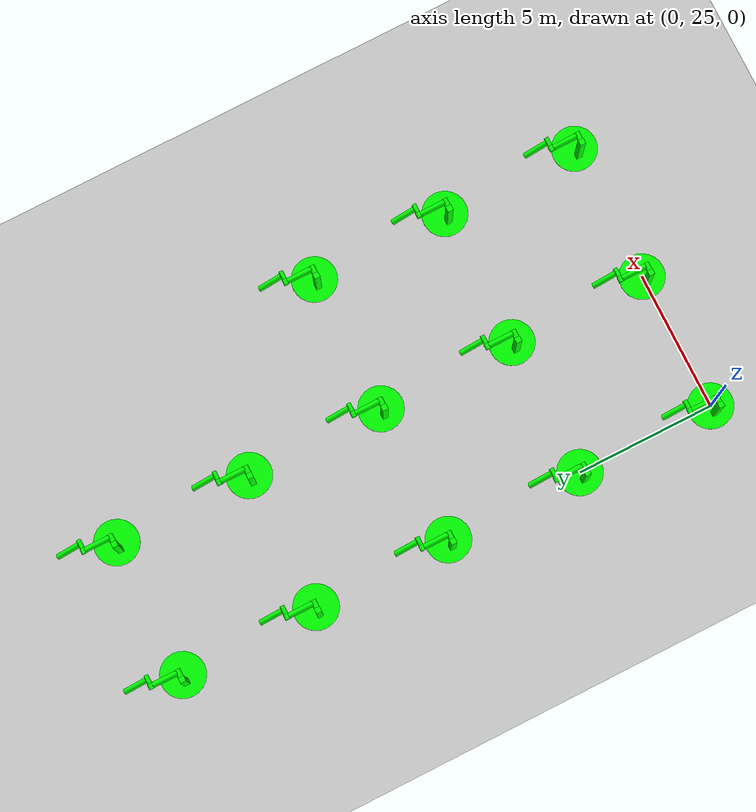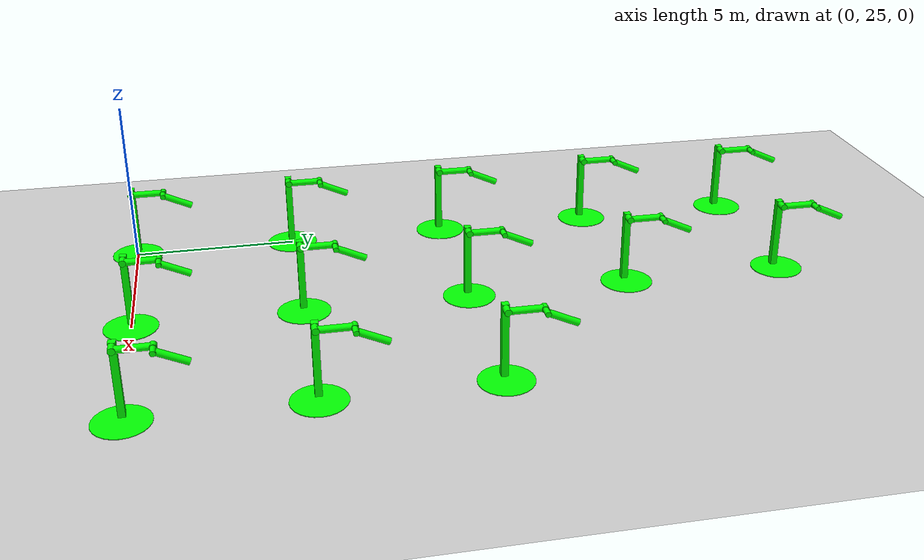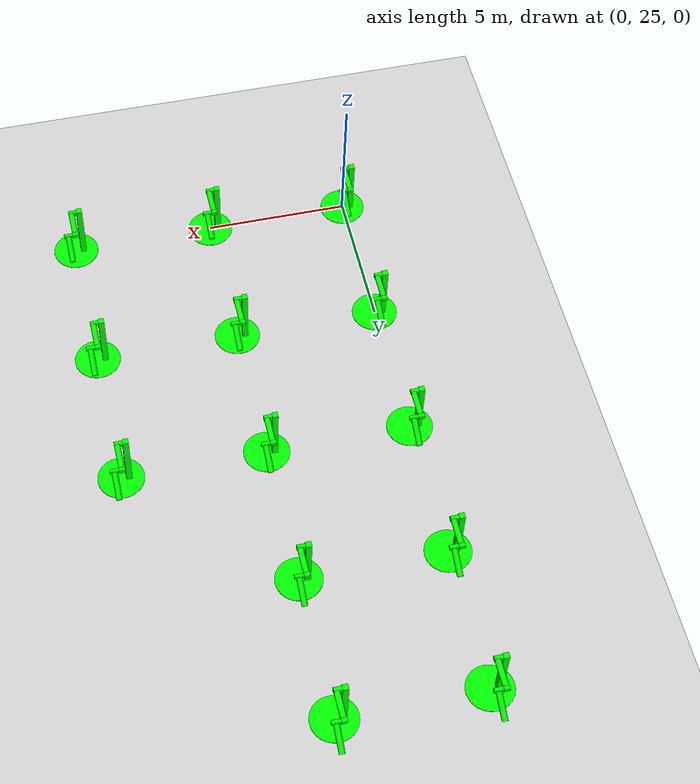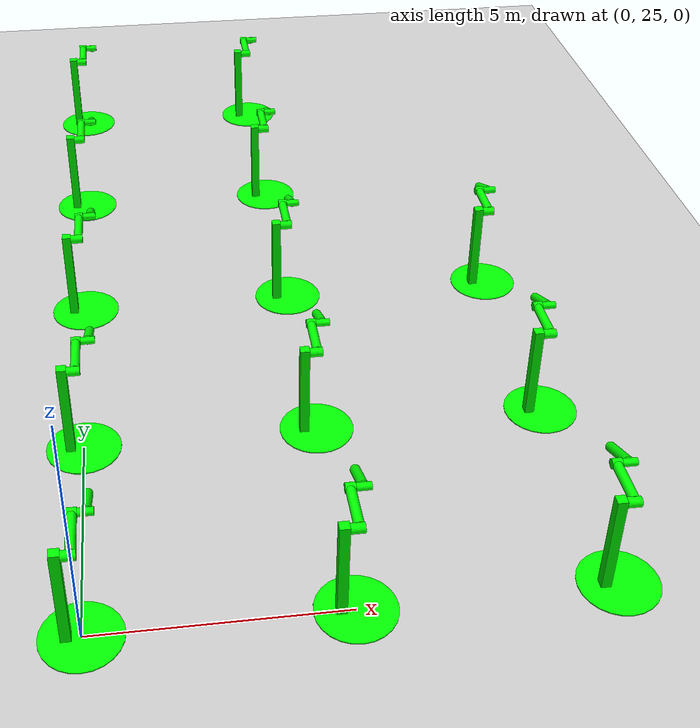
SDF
<sdf version="1.6">
 <world name="double_pendulums">
  <model name="ground_plane">
   <static>true</static>
   <link name="link">
    <collision name="collision">
     <geometry><plane><normal>0 0 1</normal><size>100 100</size></plane></geometry>
    </collision>
    <visual name="visual">
     <geometry><plane><normal>0 0 1</normal><size>100 100</size></plane></geometry>
     <material>
      <ambient>0.8 0.8 0.8 1</ambient>
      <diffuse>0.8 0.8 0.8 1</diffuse>
      <specular>0.8 0.8 0.8 1</specular>
     </material>
    </visual>
   </link>
  </model>
  <model name="dbl_pendulum_55">
   <pose>0 25 0 0 0 0</pose>
   <link name="base">
    <inertial><mass>100</mass></inertial>
    <visual name="vis_plate_on_ground">
     <pose>0 0 0.01 0 0 0</pose>
     <geometry><cylinder><radius>0.8</radius><length>0.02</length></cylinder></geometry>
     <material><ambient>0 1 0 1</ambient><diffuse>0 1 0 1</diffuse><specular>0 1 0 1</specular></material>
    </visual>
    <visual name="vis_pole">
     <pose>-0.275 0 1.1 0 0 0</pose>
     <geometry><box><size>0.2 0.2 2.2</size></box></geometry>
     <material><ambient>0 1 0 1</ambient><diffuse>0 1 0 1</diffuse><specular>0 1 0 1</specular></material>
    </visual>
    <collision name="col_plate_on_ground">
     <pose>0 0 0.01 0 0 0</pose>
     <geometry><cylinder><radius>0.8</radius><length>0.02</length></cylinder></geometry>
    </collision>
    <collision name="col_pole">
     <pose>-0.275 0 1.1 0 0 0</pose>
     <geometry><box><size>0.2 0.2 2.2</size></box></geometry>
    </collision>
   </link>
   <link name="upper_link">
    <pose>0 0 2.1 -1.5708 0 0</pose>
    <inertial><pose>0 0 0.5 0 0 0</pose></inertial>
    <visual name="vis_upper_joint">
     <pose>-0.05 0 0 0 1.5708 0</pose>
     <geometry><cylinder><radius>0.1</radius><length>0.3</length></cylinder></geometry>
     <material><ambient>0 1 0 1</ambient><diffuse>0 1 0 1</diffuse><specular>0 1 0 1</specular></material>
    </visual>
    <visual name="vis_lower_joint">
     <pose>0 0 1.0 0 1.5708 0</pose>
     <geometry><cylinder><radius>0.1</radius><length>0.2</length></cylinder></geometry>
     <material><ambient>0 1 0 1</ambient><diffuse>0 1 0 1</diffuse><specular>0 1 0 1</specular></material>
    </visual>
    <visual name="vis_cylinder">
     <pose>0 0 0.5 0 0 0</pose>
     <geometry><cylinder><radius>0.1</radius><length>0.9</length></cylinder></geometry>
     <material><ambient>0 1 0 1</ambient><diffuse>0 1 0 1</diffuse><specular>0 1 0 1</specular></material>
    </visual>
    <collision name="col_upper_joint">
     <pose>-0.05 0 0 0 1.5708 0</pose>
     <geometry><cylinder><radius>0.1</radius><length>0.3</length></cylinder></geometry>
    </collision>
    <collision name="col_lower_joint">
     <pose>0 0 1.0 0 1.5708 0</pose>
     <geometry><cylinder><radius>0.1</radius><length>0.2</length></cylinder></geometry>
    </collision>
    <collision name="col_cylinder">
     <pose>0 0 0.5 0 0 0</pose>
     <geometry><cylinder><radius>0.1</radius><length>0.9</length></cylinder></geometry>
    </collision>
   </link>
   <link name="lower_link">
    <pose>0.25 1.0 2.1 -2 0 0</pose>
    <inertial><pose>0 0 0.5 0 0 0</pose></inertial>
    <visual name="vis_lower_joint">
     <pose>0 0 0 0 1.5708 0</pose>
     <geometry><cylinder><radius>0.08</radius><length>0.3</length></cylinder></geometry>
     <material><ambient>0 1 0 1</ambient><diffuse>0 1 0 1</diffuse><specular>0 1 0 1</specular></material>
    </visual>
    <visual name="vis_cylinder">
     <pose>0 0 0.5 0 0 0</pose>
     <geometry><cylinder><radius>0.1</radius><length>0.9</length></cylinder></geometry>
     <material><ambient>0 1 0 1</ambient><diffuse>0 1 0 1</diffuse><specular>0 1 0 1</specular></material>
    </visual>
    <collision name="col_lower_joint">
     <pose>0 0 0 0 1.5708 0</pose>
     <geometry><cylinder><radius>0.08</radius><length>0.3</length></cylinder></geometry>
    </collision>
    <collision name="col_cylinder">
     <pose>0 0 0.5 0 0 0</pose>
     <geometry><cylinder><radius>0.1</radius><length>0.9</length></cylinder></geometry>
    </collision>
   </link>
   <joint name="upper_joint" type="revolute">
    <parent>base</parent>
    <child>upper_link</child>
    <axis><xyz>1.0 0 0</xyz></axis>
   </joint>
   <joint name="lower_joint" type="revolute">
    <parent>upper_link</parent>
    <child>lower_link</child>
    <axis><xyz>1.0 0 0</xyz></axis>
   </joint>
  </model>
  <model name="dbl_pendulum_56">
   <pose>5 25 0 0 0 0</pose>
   <link name="base">
    <inertial><mass>100</mass></inertial>
    <visual name="vis_plate_on_ground">
     <pose>0 0 0.01 0 0 0</pose>
     <geometry><cylinder><radius>0.8</radius><length>0.02</length></cylinder></geometry>
     <material><ambient>0 1 0 1</ambient><diffuse>0 1 0 1</diffuse><specular>0 1 0 1</specular></material>
    </visual>
    <visual name="vis_pole">
     <pose>-0.275 0 1.1 0 0 0</pose>
     <geometry><box><size>0.2 0.2 2.2</size></box></geometry>
     <material><ambient>0 1 0 1</ambient><diffuse>0 1 0 1</diffuse><specular>0 1 0 1</specular></material>
    </visual>
    <collision name="col_plate_on_ground">
     <pose>0 0 0.01 0 0 0</pose>
     <geometry><cylinder><radius>0.8</radius><length>0.02</length></cylinder></geometry>
    </collision>
    <collision name="col_pole">
     <pose>-0.275 0 1.1 0 0 0</pose>
     <geometry><box><size>0.2 0.2 2.2</size></box></geometry>
    </collision>
   </link>
   <link name="upper_link">
    <pose>0 0 2.1 -1.5708 0 0</pose>
    <inertial><pose>0 0 0.5 0 0 0</pose></inertial>
    <visual name="vis_upper_joint">
     <pose>-0.05 0 0 0 1.5708 0</pose>
     <geometry><cylinder><radius>0.1</radius><length>0.3</length></cylinder></geometry>
     <material><ambient>0 1 0 1</ambient><diffuse>0 1 0 1</diffuse><specular>0 1 0 1</specular></material>
    </visual>
    <visual name="vis_lower_joint">
     <pose>0 0 1.0 0 1.5708 0</pose>
     <geometry><cylinder><radius>0.1</radius><length>0.2</length></cylinder></geometry>
     <material><ambient>0 1 0 1</ambient><diffuse>0 1 0 1</diffuse><specular>0 1 0 1</specular></material>
    </visual>
    <visual name="vis_cylinder">
     <pose>0 0 0.5 0 0 0</pose>
     <geometry><cylinder><radius>0.1</radius><length>0.9</length></cylinder></geometry>
     <material><ambient>0 1 0 1</ambient><diffuse>0 1 0 1</diffuse><specular>0 1 0 1</specular></material>
    </visual>
    <collision name="col_upper_joint">
     <pose>-0.05 0 0 0 1.5708 0</pose>
     <geometry><cylinder><radius>0.1</radius><length>0.3</length></cylinder></geometry>
    </collision>
    <collision name="col_lower_joint">
     <pose>0 0 1.0 0 1.5708 0</pose>
     <geometry><cylinder><radius>0.1</radius><length>0.2</length></cylinder></geometry>
    </collision>
    <collision name="col_cylinder">
     <pose>0 0 0.5 0 0 0</pose>
     <geometry><cylinder><radius>0.1</radius><length>0.9</length></cylinder></geometry>
    </collision>
   </link>
   <link name="lower_link">
    <pose>0.25 1.0 2.1 -2 0 0</pose>
    <inertial><pose>0 0 0.5 0 0 0</pose></inertial>
    <visual name="vis_lower_joint">
     <pose>0 0 0 0 1.5708 0</pose>
     <geometry><cylinder><radius>0.08</radius><length>0.3</length></cylinder></geometry>
     <material><ambient>0 1 0 1</ambient><diffuse>0 1 0 1</diffuse><specular>0 1 0 1</specular></material>
    </visual>
    <visual name="vis_cylinder">
     <pose>0 0 0.5 0 0 0</pose>
     <geometry><cylinder><radius>0.1</radius><length>0.9</length></cylinder></geometry>
     <material><ambient>0 1 0 1</ambient><diffuse>0 1 0 1</diffuse><specular>0 1 0 1</specular></material>
    </visual>
    <collision name="col_lower_joint">
     <pose>0 0 0 0 1.5708 0</pose>
     <geometry><cylinder><radius>0.08</radius><length>0.3</length></cylinder></geometry>
    </collision>
    <collision name="col_cylinder">
     <pose>0 0 0.5 0 0 0</pose>
     <geometry><cylinder><radius>0.1</radius><length>0.9</length></cylinder></geometry>
    </collision>
   </link>
   <joint name="upper_joint" type="revolute">
    <parent>base</parent>
    <child>upper_link</child>
    <axis><xyz>1.0 0 0</xyz></axis>
   </joint>
   <joint name="lower_joint" type="revolute">
    <parent>upper_link</parent>
    <child>lower_link</child>
    <axis><xyz>1.0 0 0</xyz></axis>
   </joint>
  </model>
  <model name="dbl_pendulum_57">
   <pose>10 25 0 0 0 0</pose>
   <link name="base">
    <inertial><mass>100</mass></inertial>
    <visual name="vis_plate_on_ground">
     <pose>0 0 0.01 0 0 0</pose>
     <geometry><cylinder><radius>0.8</radius><length>0.02</length></cylinder></geometry>
     <material><ambient>0 1 0 1</ambient><diffuse>0 1 0 1</diffuse><specular>0 1 0 1</specular></material>
    </visual>
    <visual name="vis_pole">
     <pose>-0.275 0 1.1 0 0 0</pose>
     <geometry><box><size>0.2 0.2 2.2</size></box></geometry>
     <material><ambient>0 1 0 1</ambient><diffuse>0 1 0 1</diffuse><specular>0 1 0 1</specular></material>
    </visual>
    <collision name="col_plate_on_ground">
     <pose>0 0 0.01 0 0 0</pose>
     <geometry><cylinder><radius>0.8</radius><length>0.02</length></cylinder></geometry>
    </collision>
    <collision name="col_pole">
     <pose>-0.275 0 1.1 0 0 0</pose>
     <geometry><box><size>0.2 0.2 2.2</size></box></geometry>
    </collision>
   </link>
   <link name="upper_link">
    <pose>0 0 2.1 -1.5708 0 0</pose>
    <inertial><pose>0 0 0.5 0 0 0</pose></inertial>
    <visual name="vis_upper_joint">
     <pose>-0.05 0 0 0 1.5708 0</pose>
     <geometry><cylinder><radius>0.1</radius><length>0.3</length></cylinder></geometry>
     <material><ambient>0 1 0 1</ambient><diffuse>0 1 0 1</diffuse><specular>0 1 0 1</specular></material>
    </visual>
    <visual name="vis_lower_joint">
     <pose>0 0 1.0 0 1.5708 0</pose>
     <geometry><cylinder><radius>0.1</radius><length>0.2</length></cylinder></geometry>
     <material><ambient>0 1 0 1</ambient><diffuse>0 1 0 1</diffuse><specular>0 1 0 1</specular></material>
    </visual>
    <visual name="vis_cylinder">
     <pose>0 0 0.5 0 0 0</pose>
     <geometry><cylinder><radius>0.1</radius><length>0.9</length></cylinder></geometry>
     <material><ambient>0 1 0 1</ambient><diffuse>0 1 0 1</diffuse><specular>0 1 0 1</specular></material>
    </visual>
    <collision name="col_upper_joint">
     <pose>-0.05 0 0 0 1.5708 0</pose>
     <geometry><cylinder><radius>0.1</radius><length>0.3</length></cylinder></geometry>
    </collision>
    <collision name="col_lower_joint">
     <pose>0 0 1.0 0 1.5708 0</pose>
     <geometry><cylinder><radius>0.1</radius><length>0.2</length></cylinder></geometry>
    </collision>
    <collision name="col_cylinder">
     <pose>0 0 0.5 0 0 0</pose>
     <geometry><cylinder><radius>0.1</radius><length>0.9</length></cylinder></geometry>
    </collision>
   </link>
   <link name="lower_link">
    <pose>0.25 1.0 2.1 -2 0 0</pose>
    <inertial><pose>0 0 0.5 0 0 0</pose></inertial>
    <visual name="vis_lower_joint">
     <pose>0 0 0 0 1.5708 0</pose>
     <geometry><cylinder><radius>0.08</radius><length>0.3</length></cylinder></geometry>
     <material><ambient>0 1 0 1</ambient><diffuse>0 1 0 1</diffuse><specular>0 1 0 1</specular></material>
    </visual>
    <visual name="vis_cylinder">
     <pose>0 0 0.5 0 0 0</pose>
     <geometry><cylinder><radius>0.1</radius><length>0.9</length></cylinder></geometry>
     <material><ambient>0 1 0 1</ambient><diffuse>0 1 0 1</diffuse><specular>0 1 0 1</specular></material>
    </visual>
    <collision name="col_lower_joint">
     <pose>0 0 0 0 1.5708 0</pose>
     <geometry><cylinder><radius>0.08</radius><length>0.3</length></cylinder></geometry>
    </collision>
    <collision name="col_cylinder">
     <pose>0 0 0.5 0 0 0</pose>
     <geometry><cylinder><radius>0.1</radius><length>0.9</length></cylinder></geometry>
    </collision>
   </link>
   <joint name="upper_joint" type="revolute">
    <parent>base</parent>
    <child>upper_link</child>
    <axis><xyz>1.0 0 0</xyz></axis>
   </joint>
   <joint name="lower_joint" type="revolute">
    <parent>upper_link</parent>
    <child>lower_link</child>
    <axis><xyz>1.0 0 0</xyz></axis>
   </joint>
  </model>
  <model name="dbl_pendulum_65">
   <pose>0 30 0 0 0 0</pose>
   <link name="base">
    <inertial><mass>100</mass></inertial>
    <visual name="vis_plate_on_ground">
     <pose>0 0 0.01 0 0 0</pose>
     <geometry><cylinder><radius>0.8</radius><length>0.02</length></cylinder></geometry>
     <material><ambient>0 1 0 1</ambient><diffuse>0 1 0 1</diffuse><specular>0 1 0 1</specular></material>
    </visual>
    <visual name="vis_pole">
     <pose>-0.275 0 1.1 0 0 0</pose>
     <geometry><box><size>0.2 0.2 2.2</size></box></geometry>
     <material><ambient>0 1 0 1</ambient><diffuse>0 1 0 1</diffuse><specular>0 1 0 1</specular></material>
    </visual>
    <collision name="col_plate_on_ground">
     <pose>0 0 0.01 0 0 0</pose>
     <geometry><cylinder><radius>0.8</radius><length>0.02</length></cylinder></geometry>
    </collision>
    <collision name="col_pole">
     <pose>-0.275 0 1.1 0 0 0</pose>
     <geometry><box><size>0.2 0.2 2.2</size></box></geometry>
    </collision>
   </link>
   <link name="upper_link">
    <pose>0 0 2.1 -1.5708 0 0</pose>
    <inertial><pose>0 0 0.5 0 0 0</pose></inertial>
    <visual name="vis_upper_joint">
     <pose>-0.05 0 0 0 1.5708 0</pose>
     <geometry><cylinder><radius>0.1</radius><length>0.3</length></cylinder></geometry>
     <material><ambient>0 1 0 1</ambient><diffuse>0 1 0 1</diffuse><specular>0 1 0 1</specular></material>
    </visual>
    <visual name="vis_lower_joint">
     <pose>0 0 1.0 0 1.5708 0</pose>
     <geometry><cylinder><radius>0.1</radius><length>0.2</length></cylinder></geometry>
     <material><ambient>0 1 0 1</ambient><diffuse>0 1 0 1</diffuse><specular>0 1 0 1</specular></material>
    </visual>
    <visual name="vis_cylinder">
     <pose>0 0 0.5 0 0 0</pose>
     <geometry><cylinder><radius>0.1</radius><length>0.9</length></cylinder></geometry>
     <material><ambient>0 1 0 1</ambient><diffuse>0 1 0 1</diffuse><specular>0 1 0 1</specular></material>
    </visual>
    <collision name="col_upper_joint">
     <pose>-0.05 0 0 0 1.5708 0</pose>
     <geometry><cylinder><radius>0.1</radius><length>0.3</length></cylinder></geometry>
    </collision>
    <collision name="col_lower_joint">
     <pose>0 0 1.0 0 1.5708 0</pose>
     <geometry><cylinder><radius>0.1</radius><length>0.2</length></cylinder></geometry>
    </collision>
    <collision name="col_cylinder">
     <pose>0 0 0.5 0 0 0</pose>
     <geometry><cylinder><radius>0.1</radius><length>0.9</length></cylinder></geometry>
    </collision>
   </link>
   <link name="lower_link">
    <pose>0.25 1.0 2.1 -2 0 0</pose>
    <inertial><pose>0 0 0.5 0 0 0</pose></inertial>
    <visual name="vis_lower_joint">
     <pose>0 0 0 0 1.5708 0</pose>
     <geometry><cylinder><radius>0.08</radius><length>0.3</length></cylinder></geometry>
     <material><ambient>0 1 0 1</ambient><diffuse>0 1 0 1</diffuse><specular>0 1 0 1</specular></material>
    </visual>
    <visual name="vis_cylinder">
     <pose>0 0 0.5 0 0 0</pose>
     <geometry><cylinder><radius>0.1</radius><length>0.9</length></cylinder></geometry>
     <material><ambient>0 1 0 1</ambient><diffuse>0 1 0 1</diffuse><specular>0 1 0 1</specular></material>
    </visual>
    <collision name="col_lower_joint">
     <pose>0 0 0 0 1.5708 0</pose>
     <geometry><cylinder><radius>0.08</radius><length>0.3</length></cylinder></geometry>
    </collision>
    <collision name="col_cylinder">
     <pose>0 0 0.5 0 0 0</pose>
     <geometry><cylinder><radius>0.1</radius><length>0.9</length></cylinder></geometry>
    </collision>
   </link>
   <joint name="upper_joint" type="revolute">
    <parent>base</parent>
    <child>upper_link</child>
    <axis><xyz>1.0 0 0</xyz></axis>
   </joint>
   <joint name="lower_joint" type="revolute">
    <parent>upper_link</parent>
    <child>lower_link</child>
    <axis><xyz>1.0 0 0</xyz></axis>
   </joint>
  </model>
  <model name="dbl_pendulum_66">
   <pose>5 30 0 0 0 0</pose>
   <link name="base">
    <inertial><mass>100</mass></inertial>
    <visual name="vis_plate_on_ground">
     <pose>0 0 0.01 0 0 0</pose>
     <geometry><cylinder><radius>0.8</radius><length>0.02</length></cylinder></geometry>
     <material><ambient>0 1 0 1</ambient><diffuse>0 1 0 1</diffuse><specular>0 1 0 1</specular></material>
    </visual>
    <visual name="vis_pole">
     <pose>-0.275 0 1.1 0 0 0</pose>
     <geometry><box><size>0.2 0.2 2.2</size></box></geometry>
     <material><ambient>0 1 0 1</ambient><diffuse>0 1 0 1</diffuse><specular>0 1 0 1</specular></material>
    </visual>
    <collision name="col_plate_on_ground">
     <pose>0 0 0.01 0 0 0</pose>
     <geometry><cylinder><radius>0.8</radius><length>0.02</length></cylinder></geometry>
    </collision>
    <collision name="col_pole">
     <pose>-0.275 0 1.1 0 0 0</pose>
     <geometry><box><size>0.2 0.2 2.2</size></box></geometry>
    </collision>
   </link>
   <link name="upper_link">
    <pose>0 0 2.1 -1.5708 0 0</pose>
    <inertial><pose>0 0 0.5 0 0 0</pose></inertial>
    <visual name="vis_upper_joint">
     <pose>-0.05 0 0 0 1.5708 0</pose>
     <geometry><cylinder><radius>0.1</radius><length>0.3</length></cylinder></geometry>
     <material><ambient>0 1 0 1</ambient><diffuse>0 1 0 1</diffuse><specular>0 1 0 1</specular></material>
    </visual>
    <visual name="vis_lower_joint">
     <pose>0 0 1.0 0 1.5708 0</pose>
     <geometry><cylinder><radius>0.1</radius><length>0.2</length></cylinder></geometry>
     <material><ambient>0 1 0 1</ambient><diffuse>0 1 0 1</diffuse><specular>0 1 0 1</specular></material>
    </visual>
    <visual name="vis_cylinder">
     <pose>0 0 0.5 0 0 0</pose>
     <geometry><cylinder><radius>0.1</radius><length>0.9</length></cylinder></geometry>
     <material><ambient>0 1 0 1</ambient><diffuse>0 1 0 1</diffuse><specular>0 1 0 1</specular></material>
    </visual>
    <collision name="col_upper_joint">
     <pose>-0.05 0 0 0 1.5708 0</pose>
     <geometry><cylinder><radius>0.1</radius><length>0.3</length></cylinder></geometry>
    </collision>
    <collision name="col_lower_joint">
     <pose>0 0 1.0 0 1.5708 0</pose>
     <geometry><cylinder><radius>0.1</radius><length>0.2</length></cylinder></geometry>
    </collision>
    <collision name="col_cylinder">
     <pose>0 0 0.5 0 0 0</pose>
     <geometry><cylinder><radius>0.1</radius><length>0.9</length></cylinder></geometry>
    </collision>
   </link>
   <link name="lower_link">
    <pose>0.25 1.0 2.1 -2 0 0</pose>
    <inertial><pose>0 0 0.5 0 0 0</pose></inertial>
    <visual name="vis_lower_joint">
     <pose>0 0 0 0 1.5708 0</pose>
     <geometry><cylinder><radius>0.08</radius><length>0.3</length></cylinder></geometry>
     <material><ambient>0 1 0 1</ambient><diffuse>0 1 0 1</diffuse><specular>0 1 0 1</specular></material>
    </visual>
    <visual name="vis_cylinder">
     <pose>0 0 0.5 0 0 0</pose>
     <geometry><cylinder><radius>0.1</radius><length>0.9</length></cylinder></geometry>
     <material><ambient>0 1 0 1</ambient><diffuse>0 1 0 1</diffuse><specular>0 1 0 1</specular></material>
    </visual>
    <collision name="col_lower_joint">
     <pose>0 0 0 0 1.5708 0</pose>
     <geometry><cylinder><radius>0.08</radius><length>0.3</length></cylinder></geometry>
    </collision>
    <collision name="col_cylinder">
     <pose>0 0 0.5 0 0 0</pose>
     <geometry><cylinder><radius>0.1</radius><length>0.9</length></cylinder></geometry>
    </collision>
   </link>
   <joint name="upper_joint" type="revolute">
    <parent>base</parent>
    <child>upper_link</child>
    <axis><xyz>1.0 0 0</xyz></axis>
   </joint>
   <joint name="lower_joint" type="revolute">
    <parent>upper_link</parent>
    <child>lower_link</child>
    <axis><xyz>1.0 0 0</xyz></axis>
   </joint>
  </model>
  <model name="dbl_pendulum_67">
   <pose>10 30 0 0 0 0</pose>
   <link name="base">
    <inertial><mass>100</mass></inertial>
    <visual name="vis_plate_on_ground">
     <pose>0 0 0.01 0 0 0</pose>
     <geometry><cylinder><radius>0.8</radius><length>0.02</length></cylinder></geometry>
     <material><ambient>0 1 0 1</ambient><diffuse>0 1 0 1</diffuse><specular>0 1 0 1</specular></material>
    </visual>
    <visual name="vis_pole">
     <pose>-0.275 0 1.1 0 0 0</pose>
     <geometry><box><size>0.2 0.2 2.2</size></box></geometry>
     <material><ambient>0 1 0 1</ambient><diffuse>0 1 0 1</diffuse><specular>0 1 0 1</specular></material>
    </visual>
    <collision name="col_plate_on_ground">
     <pose>0 0 0.01 0 0 0</pose>
     <geometry><cylinder><radius>0.8</radius><length>0.02</length></cylinder></geometry>
    </collision>
    <collision name="col_pole">
     <pose>-0.275 0 1.1 0 0 0</pose>
     <geometry><box><size>0.2 0.2 2.2</size></box></geometry>
    </collision>
   </link>
   <link name="upper_link">
    <pose>0 0 2.1 -1.5708 0 0</pose>
    <inertial><pose>0 0 0.5 0 0 0</pose></inertial>
    <visual name="vis_upper_joint">
     <pose>-0.05 0 0 0 1.5708 0</pose>
     <geometry><cylinder><radius>0.1</radius><length>0.3</length></cylinder></geometry>
     <material><ambient>0 1 0 1</ambient><diffuse>0 1 0 1</diffuse><specular>0 1 0 1</specular></material>
    </visual>
    <visual name="vis_lower_joint">
     <pose>0 0 1.0 0 1.5708 0</pose>
     <geometry><cylinder><radius>0.1</radius><length>0.2</length></cylinder></geometry>
     <material><ambient>0 1 0 1</ambient><diffuse>0 1 0 1</diffuse><specular>0 1 0 1</specular></material>
    </visual>
    <visual name="vis_cylinder">
     <pose>0 0 0.5 0 0 0</pose>
     <geometry><cylinder><radius>0.1</radius><length>0.9</length></cylinder></geometry>
     <material><ambient>0 1 0 1</ambient><diffuse>0 1 0 1</diffuse><specular>0 1 0 1</specular></material>
    </visual>
    <collision name="col_upper_joint">
     <pose>-0.05 0 0 0 1.5708 0</pose>
     <geometry><cylinder><radius>0.1</radius><length>0.3</length></cylinder></geometry>
    </collision>
    <collision name="col_lower_joint">
     <pose>0 0 1.0 0 1.5708 0</pose>
     <geometry><cylinder><radius>0.1</radius><length>0.2</length></cylinder></geometry>
    </collision>
    <collision name="col_cylinder">
     <pose>0 0 0.5 0 0 0</pose>
     <geometry><cylinder><radius>0.1</radius><length>0.9</length></cylinder></geometry>
    </collision>
   </link>
   <link name="lower_link">
    <pose>0.25 1.0 2.1 -2 0 0</pose>
    <inertial><pose>0 0 0.5 0 0 0</pose></inertial>
    <visual name="vis_lower_joint">
     <pose>0 0 0 0 1.5708 0</pose>
     <geometry><cylinder><radius>0.08</radius><length>0.3</length></cylinder></geometry>
     <material><ambient>0 1 0 1</ambient><diffuse>0 1 0 1</diffuse><specular>0 1 0 1</specular></material>
    </visual>
    <visual name="vis_cylinder">
     <pose>0 0 0.5 0 0 0</pose>
     <geometry><cylinder><radius>0.1</radius><length>0.9</length></cylinder></geometry>
     <material><ambient>0 1 0 1</ambient><diffuse>0 1 0 1</diffuse><specular>0 1 0 1</specular></material>
    </visual>
    <collision name="col_lower_joint">
     <pose>0 0 0 0 1.5708 0</pose>
     <geometry><cylinder><radius>0.08</radius><length>0.3</length></cylinder></geometry>
    </collision>
    <collision name="col_cylinder">
     <pose>0 0 0.5 0 0 0</pose>
     <geometry><cylinder><radius>0.1</radius><length>0.9</length></cylinder></geometry>
    </collision>
   </link>
   <joint name="upper_joint" type="revolute">
    <parent>base</parent>
    <child>upper_link</child>
    <axis><xyz>1.0 0 0</xyz></axis>
   </joint>
   <joint name="lower_joint" type="revolute">
    <parent>upper_link</parent>
    <child>lower_link</child>
    <axis><xyz>1.0 0 0</xyz></axis>
   </joint>
  </model>
  <model name="dbl_pendulum_75">
   <pose>0 35 0 0 0 0</pose>
   <link name="base">
    <inertial><mass>100</mass></inertial>
    <visual name="vis_plate_on_ground">
     <pose>0 0 0.01 0 0 0</pose>
     <geometry><cylinder><radius>0.8</radius><length>0.02</length></cylinder></geometry>
     <material><ambient>0 1 0 1</ambient><diffuse>0 1 0 1</diffuse><specular>0 1 0 1</specular></material>
    </visual>
    <visual name="vis_pole">
     <pose>-0.275 0 1.1 0 0 0</pose>
     <geometry><box><size>0.2 0.2 2.2</size></box></geometry>
     <material><ambient>0 1 0 1</ambient><diffuse>0 1 0 1</diffuse><specular>0 1 0 1</specular></material>
    </visual>
    <collision name="col_plate_on_ground">
     <pose>0 0 0.01 0 0 0</pose>
     <geometry><cylinder><radius>0.8</radius><length>0.02</length></cylinder></geometry>
    </collision>
    <collision name="col_pole">
     <pose>-0.275 0 1.1 0 0 0</pose>
     <geometry><box><size>0.2 0.2 2.2</size></box></geometry>
    </collision>
   </link>
   <link name="upper_link">
    <pose>0 0 2.1 -1.5708 0 0</pose>
    <inertial><pose>0 0 0.5 0 0 0</pose></inertial>
    <visual name="vis_upper_joint">
     <pose>-0.05 0 0 0 1.5708 0</pose>
     <geometry><cylinder><radius>0.1</radius><length>0.3</length></cylinder></geometry>
     <material><ambient>0 1 0 1</ambient><diffuse>0 1 0 1</diffuse><specular>0 1 0 1</specular></material>
    </visual>
    <visual name="vis_lower_joint">
     <pose>0 0 1.0 0 1.5708 0</pose>
     <geometry><cylinder><radius>0.1</radius><length>0.2</length></cylinder></geometry>
     <material><ambient>0 1 0 1</ambient><diffuse>0 1 0 1</diffuse><specular>0 1 0 1</specular></material>
    </visual>
    <visual name="vis_cylinder">
     <pose>0 0 0.5 0 0 0</pose>
     <geometry><cylinder><radius>0.1</radius><length>0.9</length></cylinder></geometry>
     <material><ambient>0 1 0 1</ambient><diffuse>0 1 0 1</diffuse><specular>0 1 0 1</specular></material>
    </visual>
    <collision name="col_upper_joint">
     <pose>-0.05 0 0 0 1.5708 0</pose>
     <geometry><cylinder><radius>0.1</radius><length>0.3</length></cylinder></geometry>
    </collision>
    <collision name="col_lower_joint">
     <pose>0 0 1.0 0 1.5708 0</pose>
     <geometry><cylinder><radius>0.1</radius><length>0.2</length></cylinder></geometry>
    </collision>
    <collision name="col_cylinder">
     <pose>0 0 0.5 0 0 0</pose>
     <geometry><cylinder><radius>0.1</radius><length>0.9</length></cylinder></geometry>
    </collision>
   </link>
   <link name="lower_link">
    <pose>0.25 1.0 2.1 -2 0 0</pose>
    <inertial><pose>0 0 0.5 0 0 0</pose></inertial>
    <visual name="vis_lower_joint">
     <pose>0 0 0 0 1.5708 0</pose>
     <geometry><cylinder><radius>0.08</radius><length>0.3</length></cylinder></geometry>
     <material><ambient>0 1 0 1</ambient><diffuse>0 1 0 1</diffuse><specular>0 1 0 1</specular></material>
    </visual>
    <visual name="vis_cylinder">
     <pose>0 0 0.5 0 0 0</pose>
     <geometry><cylinder><radius>0.1</radius><length>0.9</length></cylinder></geometry>
     <material><ambient>0 1 0 1</ambient><diffuse>0 1 0 1</diffuse><specular>0 1 0 1</specular></material>
    </visual>
    <collision name="col_lower_joint">
     <pose>0 0 0 0 1.5708 0</pose>
     <geometry><cylinder><radius>0.08</radius><length>0.3</length></cylinder></geometry>
    </collision>
    <collision name="col_cylinder">
     <pose>0 0 0.5 0 0 0</pose>
     <geometry><cylinder><radius>0.1</radius><length>0.9</length></cylinder></geometry>
    </collision>
   </link>
   <joint name="upper_joint" type="revolute">
    <parent>base</parent>
    <child>upper_link</child>
    <axis><xyz>1.0 0 0</xyz></axis>
   </joint>
   <joint name="lower_joint" type="revolute">
    <parent>upper_link</parent>
    <child>lower_link</child>
    <axis><xyz>1.0 0 0</xyz></axis>
   </joint>
  </model>
  <model name="dbl_pendulum_76">
   <pose>5 35 0 0 0 0</pose>
   <link name="base">
    <inertial><mass>100</mass></inertial>
    <visual name="vis_plate_on_ground">
     <pose>0 0 0.01 0 0 0</pose>
     <geometry><cylinder><radius>0.8</radius><length>0.02</length></cylinder></geometry>
     <material><ambient>0 1 0 1</ambient><diffuse>0 1 0 1</diffuse><specular>0 1 0 1</specular></material>
    </visual>
    <visual name="vis_pole">
     <pose>-0.275 0 1.1 0 0 0</pose>
     <geometry><box><size>0.2 0.2 2.2</size></box></geometry>
     <material><ambient>0 1 0 1</ambient><diffuse>0 1 0 1</diffuse><specular>0 1 0 1</specular></material>
    </visual>
    <collision name="col_plate_on_ground">
     <pose>0 0 0.01 0 0 0</pose>
     <geometry><cylinder><radius>0.8</radius><length>0.02</length></cylinder></geometry>
    </collision>
    <collision name="col_pole">
     <pose>-0.275 0 1.1 0 0 0</pose>
     <geometry><box><size>0.2 0.2 2.2</size></box></geometry>
    </collision>
   </link>
   <link name="upper_link">
    <pose>0 0 2.1 -1.5708 0 0</pose>
    <inertial><pose>0 0 0.5 0 0 0</pose></inertial>
    <visual name="vis_upper_joint">
     <pose>-0.05 0 0 0 1.5708 0</pose>
     <geometry><cylinder><radius>0.1</radius><length>0.3</length></cylinder></geometry>
     <material><ambient>0 1 0 1</ambient><diffuse>0 1 0 1</diffuse><specular>0 1 0 1</specular></material>
    </visual>
    <visual name="vis_lower_joint">
     <pose>0 0 1.0 0 1.5708 0</pose>
     <geometry><cylinder><radius>0.1</radius><length>0.2</length></cylinder></geometry>
     <material><ambient>0 1 0 1</ambient><diffuse>0 1 0 1</diffuse><specular>0 1 0 1</specular></material>
    </visual>
    <visual name="vis_cylinder">
     <pose>0 0 0.5 0 0 0</pose>
     <geometry><cylinder><radius>0.1</radius><length>0.9</length></cylinder></geometry>
     <material><ambient>0 1 0 1</ambient><diffuse>0 1 0 1</diffuse><specular>0 1 0 1</specular></material>
    </visual>
    <collision name="col_upper_joint">
     <pose>-0.05 0 0 0 1.5708 0</pose>
     <geometry><cylinder><radius>0.1</radius><length>0.3</length></cylinder></geometry>
    </collision>
    <collision name="col_lower_joint">
     <pose>0 0 1.0 0 1.5708 0</pose>
     <geometry><cylinder><radius>0.1</radius><length>0.2</length></cylinder></geometry>
    </collision>
    <collision name="col_cylinder">
     <pose>0 0 0.5 0 0 0</pose>
     <geometry><cylinder><radius>0.1</radius><length>0.9</length></cylinder></geometry>
    </collision>
   </link>
   <link name="lower_link">
    <pose>0.25 1.0 2.1 -2 0 0</pose>
    <inertial><pose>0 0 0.5 0 0 0</pose></inertial>
    <visual name="vis_lower_joint">
     <pose>0 0 0 0 1.5708 0</pose>
     <geometry><cylinder><radius>0.08</radius><length>0.3</length></cylinder></geometry>
     <material><ambient>0 1 0 1</ambient><diffuse>0 1 0 1</diffuse><specular>0 1 0 1</specular></material>
    </visual>
    <visual name="vis_cylinder">
     <pose>0 0 0.5 0 0 0</pose>
     <geometry><cylinder><radius>0.1</radius><length>0.9</length></cylinder></geometry>
     <material><ambient>0 1 0 1</ambient><diffuse>0 1 0 1</diffuse><specular>0 1 0 1</specular></material>
    </visual>
    <collision name="col_lower_joint">
     <pose>0 0 0 0 1.5708 0</pose>
     <geometry><cylinder><radius>0.08</radius><length>0.3</length></cylinder></geometry>
    </collision>
    <collision name="col_cylinder">
     <pose>0 0 0.5 0 0 0</pose>
     <geometry><cylinder><radius>0.1</radius><length>0.9</length></cylinder></geometry>
    </collision>
   </link>
   <joint name="upper_joint" type="revolute">
    <parent>base</parent>
    <child>upper_link</child>
    <axis><xyz>1.0 0 0</xyz></axis>
   </joint>
   <joint name="lower_joint" type="revolute">
    <parent>upper_link</parent>
    <child>lower_link</child>
    <axis><xyz>1.0 0 0</xyz></axis>
   </joint>
  </model>
  <model name="dbl_pendulum_77">
   <pose>10 35 0 0 0 0</pose>
   <link name="base">
    <inertial><mass>100</mass></inertial>
    <visual name="vis_plate_on_ground">
     <pose>0 0 0.01 0 0 0</pose>
     <geometry><cylinder><radius>0.8</radius><length>0.02</length></cylinder></geometry>
     <material><ambient>0 1 0 1</ambient><diffuse>0 1 0 1</diffuse><specular>0 1 0 1</specular></material>
    </visual>
    <visual name="vis_pole">
     <pose>-0.275 0 1.1 0 0 0</pose>
     <geometry><box><size>0.2 0.2 2.2</size></box></geometry>
     <material><ambient>0 1 0 1</ambient><diffuse>0 1 0 1</diffuse><specular>0 1 0 1</specular></material>
    </visual>
    <collision name="col_plate_on_ground">
     <pose>0 0 0.01 0 0 0</pose>
     <geometry><cylinder><radius>0.8</radius><length>0.02</length></cylinder></geometry>
    </collision>
    <collision name="col_pole">
     <pose>-0.275 0 1.1 0 0 0</pose>
     <geometry><box><size>0.2 0.2 2.2</size></box></geometry>
    </collision>
   </link>
   <link name="upper_link">
    <pose>0 0 2.1 -1.5708 0 0</pose>
    <inertial><pose>0 0 0.5 0 0 0</pose></inertial>
    <visual name="vis_upper_joint">
     <pose>-0.05 0 0 0 1.5708 0</pose>
     <geometry><cylinder><radius>0.1</radius><length>0.3</length></cylinder></geometry>
     <material><ambient>0 1 0 1</ambient><diffuse>0 1 0 1</diffuse><specular>0 1 0 1</specular></material>
    </visual>
    <visual name="vis_lower_joint">
     <pose>0 0 1.0 0 1.5708 0</pose>
     <geometry><cylinder><radius>0.1</radius><length>0.2</length></cylinder></geometry>
     <material><ambient>0 1 0 1</ambient><diffuse>0 1 0 1</diffuse><specular>0 1 0 1</specular></material>
    </visual>
    <visual name="vis_cylinder">
     <pose>0 0 0.5 0 0 0</pose>
     <geometry><cylinder><radius>0.1</radius><length>0.9</length></cylinder></geometry>
     <material><ambient>0 1 0 1</ambient><diffuse>0 1 0 1</diffuse><specular>0 1 0 1</specular></material>
    </visual>
    <collision name="col_upper_joint">
     <pose>-0.05 0 0 0 1.5708 0</pose>
     <geometry><cylinder><radius>0.1</radius><length>0.3</length></cylinder></geometry>
    </collision>
    <collision name="col_lower_joint">
     <pose>0 0 1.0 0 1.5708 0</pose>
     <geometry><cylinder><radius>0.1</radius><length>0.2</length></cylinder></geometry>
    </collision>
    <collision name="col_cylinder">
     <pose>0 0 0.5 0 0 0</pose>
     <geometry><cylinder><radius>0.1</radius><length>0.9</length></cylinder></geometry>
    </collision>
   </link>
   <link name="lower_link">
    <pose>0.25 1.0 2.1 -2 0 0</pose>
    <inertial><pose>0 0 0.5 0 0 0</pose></inertial>
    <visual name="vis_lower_joint">
     <pose>0 0 0 0 1.5708 0</pose>
     <geometry><cylinder><radius>0.08</radius><length>0.3</length></cylinder></geometry>
     <material><ambient>0 1 0 1</ambient><diffuse>0 1 0 1</diffuse><specular>0 1 0 1</specular></material>
    </visual>
    <visual name="vis_cylinder">
     <pose>0 0 0.5 0 0 0</pose>
     <geometry><cylinder><radius>0.1</radius><length>0.9</length></cylinder></geometry>
     <material><ambient>0 1 0 1</ambient><diffuse>0 1 0 1</diffuse><specular>0 1 0 1</specular></material>
    </visual>
    <collision name="col_lower_joint">
     <pose>0 0 0 0 1.5708 0</pose>
     <geometry><cylinder><radius>0.08</radius><length>0.3</length></cylinder></geometry>
    </collision>
    <collision name="col_cylinder">
     <pose>0 0 0.5 0 0 0</pose>
     <geometry><cylinder><radius>0.1</radius><length>0.9</length></cylinder></geometry>
    </collision>
   </link>
   <joint name="upper_joint" type="revolute">
    <parent>base</parent>
    <child>upper_link</child>
    <axis><xyz>1.0 0 0</xyz></axis>
   </joint>
   <joint name="lower_joint" type="revolute">
    <parent>upper_link</parent>
    <child>lower_link</child>
    <axis><xyz>1.0 0 0</xyz></axis>
   </joint>
  </model>
  <model name="dbl_pendulum_85">
   <pose>0 40 0 0 0 0</pose>
   <link name="base">
    <inertial><mass>100</mass></inertial>
    <visual name="vis_plate_on_ground">
     <pose>0 0 0.01 0 0 0</pose>
     <geometry><cylinder><radius>0.8</radius><length>0.02</length></cylinder></geometry>
     <material><ambient>0 1 0 1</ambient><diffuse>0 1 0 1</diffuse><specular>0 1 0 1</specular></material>
    </visual>
    <visual name="vis_pole">
     <pose>-0.275 0 1.1 0 0 0</pose>
     <geometry><box><size>0.2 0.2 2.2</size></box></geometry>
     <material><ambient>0 1 0 1</ambient><diffuse>0 1 0 1</diffuse><specular>0 1 0 1</specular></material>
    </visual>
    <collision name="col_plate_on_ground">
     <pose>0 0 0.01 0 0 0</pose>
     <geometry><cylinder><radius>0.8</radius><length>0.02</length></cylinder></geometry>
    </collision>
    <collision name="col_pole">
     <pose>-0.275 0 1.1 0 0 0</pose>
     <geometry><box><size>0.2 0.2 2.2</size></box></geometry>
    </collision>
   </link>
   <link name="upper_link">
    <pose>0 0 2.1 -1.5708 0 0</pose>
    <inertial><pose>0 0 0.5 0 0 0</pose></inertial>
    <visual name="vis_upper_joint">
     <pose>-0.05 0 0 0 1.5708 0</pose>
     <geometry><cylinder><radius>0.1</radius><length>0.3</length></cylinder></geometry>
     <material><ambient>0 1 0 1</ambient><diffuse>0 1 0 1</diffuse><specular>0 1 0 1</specular></material>
    </visual>
    <visual name="vis_lower_joint">
     <pose>0 0 1.0 0 1.5708 0</pose>
     <geometry><cylinder><radius>0.1</radius><length>0.2</length></cylinder></geometry>
     <material><ambient>0 1 0 1</ambient><diffuse>0 1 0 1</diffuse><specular>0 1 0 1</specular></material>
    </visual>
    <visual name="vis_cylinder">
     <pose>0 0 0.5 0 0 0</pose>
     <geometry><cylinder><radius>0.1</radius><length>0.9</length></cylinder></geometry>
     <material><ambient>0 1 0 1</ambient><diffuse>0 1 0 1</diffuse><specular>0 1 0 1</specular></material>
    </visual>
    <collision name="col_upper_joint">
     <pose>-0.05 0 0 0 1.5708 0</pose>
     <geometry><cylinder><radius>0.1</radius><length>0.3</length></cylinder></geometry>
    </collision>
    <collision name="col_lower_joint">
     <pose>0 0 1.0 0 1.5708 0</pose>
     <geometry><cylinder><radius>0.1</radius><length>0.2</length></cylinder></geometry>
    </collision>
    <collision name="col_cylinder">
     <pose>0 0 0.5 0 0 0</pose>
     <geometry><cylinder><radius>0.1</radius><length>0.9</length></cylinder></geometry>
    </collision>
   </link>
   <link name="lower_link">
    <pose>0.25 1.0 2.1 -2 0 0</pose>
    <inertial><pose>0 0 0.5 0 0 0</pose></inertial>
    <visual name="vis_lower_joint">
     <pose>0 0 0 0 1.5708 0</pose>
     <geometry><cylinder><radius>0.08</radius><length>0.3</length></cylinder></geometry>
     <material><ambient>0 1 0 1</ambient><diffuse>0 1 0 1</diffuse><specular>0 1 0 1</specular></material>
    </visual>
    <visual name="vis_cylinder">
     <pose>0 0 0.5 0 0 0</pose>
     <geometry><cylinder><radius>0.1</radius><length>0.9</length></cylinder></geometry>
     <material><ambient>0 1 0 1</ambient><diffuse>0 1 0 1</diffuse><specular>0 1 0 1</specular></material>
    </visual>
    <collision name="col_lower_joint">
     <pose>0 0 0 0 1.5708 0</pose>
     <geometry><cylinder><radius>0.08</radius><length>0.3</length></cylinder></geometry>
    </collision>
    <collision name="col_cylinder">
     <pose>0 0 0.5 0 0 0</pose>
     <geometry><cylinder><radius>0.1</radius><length>0.9</length></cylinder></geometry>
    </collision>
   </link>
   <joint name="upper_joint" type="revolute">
    <parent>base</parent>
    <child>upper_link</child>
    <axis><xyz>1.0 0 0</xyz></axis>
   </joint>
   <joint name="lower_joint" type="revolute">
    <parent>upper_link</parent>
    <child>lower_link</child>
    <axis><xyz>1.0 0 0</xyz></axis>
   </joint>
  </model>
  <model name="dbl_pendulum_86">
   <pose>5 40 0 0 0 0</pose>
   <link name="base">
    <inertial><mass>100</mass></inertial>
    <visual name="vis_plate_on_ground">
     <pose>0 0 0.01 0 0 0</pose>
     <geometry><cylinder><radius>0.8</radius><length>0.02</length></cylinder></geometry>
     <material><ambient>0 1 0 1</ambient><diffuse>0 1 0 1</diffuse><specular>0 1 0 1</specular></material>
    </visual>
    <visual name="vis_pole">
     <pose>-0.275 0 1.1 0 0 0</pose>
     <geometry><box><size>0.2 0.2 2.2</size></box></geometry>
     <material><ambient>0 1 0 1</ambient><diffuse>0 1 0 1</diffuse><specular>0 1 0 1</specular></material>
    </visual>
    <collision name="col_plate_on_ground">
     <pose>0 0 0.01 0 0 0</pose>
     <geometry><cylinder><radius>0.8</radius><length>0.02</length></cylinder></geometry>
    </collision>
    <collision name="col_pole">
     <pose>-0.275 0 1.1 0 0 0</pose>
     <geometry><box><size>0.2 0.2 2.2</size></box></geometry>
    </collision>
   </link>
   <link name="upper_link">
    <pose>0 0 2.1 -1.5708 0 0</pose>
    <inertial><pose>0 0 0.5 0 0 0</pose></inertial>
    <visual name="vis_upper_joint">
     <pose>-0.05 0 0 0 1.5708 0</pose>
     <geometry><cylinder><radius>0.1</radius><length>0.3</length></cylinder></geometry>
     <material><ambient>0 1 0 1</ambient><diffuse>0 1 0 1</diffuse><specular>0 1 0 1</specular></material>
    </visual>
    <visual name="vis_lower_joint">
     <pose>0 0 1.0 0 1.5708 0</pose>
     <geometry><cylinder><radius>0.1</radius><length>0.2</length></cylinder></geometry>
     <material><ambient>0 1 0 1</ambient><diffuse>0 1 0 1</diffuse><specular>0 1 0 1</specular></material>
    </visual>
    <visual name="vis_cylinder">
     <pose>0 0 0.5 0 0 0</pose>
     <geometry><cylinder><radius>0.1</radius><length>0.9</length></cylinder></geometry>
     <material><ambient>0 1 0 1</ambient><diffuse>0 1 0 1</diffuse><specular>0 1 0 1</specular></material>
    </visual>
    <collision name="col_upper_joint">
     <pose>-0.05 0 0 0 1.5708 0</pose>
     <geometry><cylinder><radius>0.1</radius><length>0.3</length></cylinder></geometry>
    </collision>
    <collision name="col_lower_joint">
     <pose>0 0 1.0 0 1.5708 0</pose>
     <geometry><cylinder><radius>0.1</radius><length>0.2</length></cylinder></geometry>
    </collision>
    <collision name="col_cylinder">
     <pose>0 0 0.5 0 0 0</pose>
     <geometry><cylinder><radius>0.1</radius><length>0.9</length></cylinder></geometry>
    </collision>
   </link>
   <link name="lower_link">
    <pose>0.25 1.0 2.1 -2 0 0</pose>
    <inertial><pose>0 0 0.5 0 0 0</pose></inertial>
    <visual name="vis_lower_joint">
     <pose>0 0 0 0 1.5708 0</pose>
     <geometry><cylinder><radius>0.08</radius><length>0.3</length></cylinder></geometry>
     <material><ambient>0 1 0 1</ambient><diffuse>0 1 0 1</diffuse><specular>0 1 0 1</specular></material>
    </visual>
    <visual name="vis_cylinder">
     <pose>0 0 0.5 0 0 0</pose>
     <geometry><cylinder><radius>0.1</radius><length>0.9</length></cylinder></geometry>
     <material><ambient>0 1 0 1</ambient><diffuse>0 1 0 1</diffuse><specular>0 1 0 1</specular></material>
    </visual>
    <collision name="col_lower_joint">
     <pose>0 0 0 0 1.5708 0</pose>
     <geometry><cylinder><radius>0.08</radius><length>0.3</length></cylinder></geometry>
    </collision>
    <collision name="col_cylinder">
     <pose>0 0 0.5 0 0 0</pose>
     <geometry><cylinder><radius>0.1</radius><length>0.9</length></cylinder></geometry>
    </collision>
   </link>
   <joint name="upper_joint" type="revolute">
    <parent>base</parent>
    <child>upper_link</child>
    <axis><xyz>1.0 0 0</xyz></axis>
   </joint>
   <joint name="lower_joint" type="revolute">
    <parent>upper_link</parent>
    <child>lower_link</child>
    <axis><xyz>1.0 0 0</xyz></axis>
   </joint>
  </model>
  <model name="dbl_pendulum_95">
   <pose>0 45 0 0 0 0</pose>
   <link name="base">
    <inertial><mass>100</mass></inertial>
    <visual name="vis_plate_on_ground">
     <pose>0 0 0.01 0 0 0</pose>
     <geometry><cylinder><radius>0.8</radius><length>0.02</length></cylinder></geometry>
     <material><ambient>0 1 0 1</ambient><diffuse>0 1 0 1</diffuse><specular>0 1 0 1</specular></material>
    </visual>
    <visual name="vis_pole">
     <pose>-0.275 0 1.1 0 0 0</pose>
     <geometry><box><size>0.2 0.2 2.2</size></box></geometry>
     <material><ambient>0 1 0 1</ambient><diffuse>0 1 0 1</diffuse><specular>0 1 0 1</specular></material>
    </visual>
    <collision name="col_plate_on_ground">
     <pose>0 0 0.01 0 0 0</pose>
     <geometry><cylinder><radius>0.8</radius><length>0.02</length></cylinder></geometry>
    </collision>
    <collision name="col_pole">
     <pose>-0.275 0 1.1 0 0 0</pose>
     <geometry><box><size>0.2 0.2 2.2</size></box></geometry>
    </collision>
   </link>
   <link name="upper_link">
    <pose>0 0 2.1 -1.5708 0 0</pose>
    <inertial><pose>0 0 0.5 0 0 0</pose></inertial>
    <visual name="vis_upper_joint">
     <pose>-0.05 0 0 0 1.5708 0</pose>
     <geometry><cylinder><radius>0.1</radius><length>0.3</length></cylinder></geometry>
     <material><ambient>0 1 0 1</ambient><diffuse>0 1 0 1</diffuse><specular>0 1 0 1</specular></material>
    </visual>
    <visual name="vis_lower_joint">
     <pose>0 0 1.0 0 1.5708 0</pose>
     <geometry><cylinder><radius>0.1</radius><length>0.2</length></cylinder></geometry>
     <material><ambient>0 1 0 1</ambient><diffuse>0 1 0 1</diffuse><specular>0 1 0 1</specular></material>
    </visual>
    <visual name="vis_cylinder">
     <pose>0 0 0.5 0 0 0</pose>
     <geometry><cylinder><radius>0.1</radius><length>0.9</length></cylinder></geometry>
     <material><ambient>0 1 0 1</ambient><diffuse>0 1 0 1</diffuse><specular>0 1 0 1</specular></material>
    </visual>
    <collision name="col_upper_joint">
     <pose>-0.05 0 0 0 1.5708 0</pose>
     <geometry><cylinder><radius>0.1</radius><length>0.3</length></cylinder></geometry>
    </collision>
    <collision name="col_lower_joint">
     <pose>0 0 1.0 0 1.5708 0</pose>
     <geometry><cylinder><radius>0.1</radius><length>0.2</length></cylinder></geometry>
    </collision>
    <collision name="col_cylinder">
     <pose>0 0 0.5 0 0 0</pose>
     <geometry><cylinder><radius>0.1</radius><length>0.9</length></cylinder></geometry>
    </collision>
   </link>
   <link name="lower_link">
    <pose>0.25 1.0 2.1 -2 0 0</pose>
    <inertial><pose>0 0 0.5 0 0 0</pose></inertial>
    <visual name="vis_lower_joint">
     <pose>0 0 0 0 1.5708 0</pose>
     <geometry><cylinder><radius>0.08</radius><length>0.3</length></cylinder></geometry>
     <material><ambient>0 1 0 1</ambient><diffuse>0 1 0 1</diffuse><specular>0 1 0 1</specular></material>
    </visual>
    <visual name="vis_cylinder">
     <pose>0 0 0.5 0 0 0</pose>
     <geometry><cylinder><radius>0.1</radius><length>0.9</length></cylinder></geometry>
     <material><ambient>0 1 0 1</ambient><diffuse>0 1 0 1</diffuse><specular>0 1 0 1</specular></material>
    </visual>
    <collision name="col_lower_joint">
     <pose>0 0 0 0 1.5708 0</pose>
     <geometry><cylinder><radius>0.08</radius><length>0.3</length></cylinder></geometry>
    </collision>
    <collision name="col_cylinder">
     <pose>0 0 0.5 0 0 0</pose>
     <geometry><cylinder><radius>0.1</radius><length>0.9</length></cylinder></geometry>
    </collision>
   </link>
   <joint name="upper_joint" type="revolute">
    <parent>base</parent>
    <child>upper_link</child>
    <axis><xyz>1.0 0 0</xyz></axis>
   </joint>
   <joint name="lower_joint" type="revolute">
    <parent>upper_link</parent>
    <child>lower_link</child>
    <axis><xyz>1.0 0 0</xyz></axis>
   </joint>
  </model>
  <model name="dbl_pendulum_96">
   <pose>5 45 0 0 0 0</pose>
   <link name="base">
    <inertial><mass>100</mass></inertial>
    <visual name="vis_plate_on_ground">
     <pose>0 0 0.01 0 0 0</pose>
     <geometry><cylinder><radius>0.8</radius><length>0.02</length></cylinder></geometry>
     <material><ambient>0 1 0 1</ambient><diffuse>0 1 0 1</diffuse><specular>0 1 0 1</specular></material>
    </visual>
    <visual name="vis_pole">
     <pose>-0.275 0 1.1 0 0 0</pose>
     <geometry><box><size>0.2 0.2 2.2</size></box></geometry>
     <material><ambient>0 1 0 1</ambient><diffuse>0 1 0 1</diffuse><specular>0 1 0 1</specular></material>
    </visual>
    <collision name="col_plate_on_ground">
     <pose>0 0 0.01 0 0 0</pose>
     <geometry><cylinder><radius>0.8</radius><length>0.02</length></cylinder></geometry>
    </collision>
    <collision name="col_pole">
     <pose>-0.275 0 1.1 0 0 0</pose>
     <geometry><box><size>0.2 0.2 2.2</size></box></geometry>
    </collision>
   </link>
   <link name="upper_link">
    <pose>0 0 2.1 -1.5708 0 0</pose>
    <inertial><pose>0 0 0.5 0 0 0</pose></inertial>
    <visual name="vis_upper_joint">
     <pose>-0.05 0 0 0 1.5708 0</pose>
     <geometry><cylinder><radius>0.1</radius><length>0.3</length></cylinder></geometry>
     <material><ambient>0 1 0 1</ambient><diffuse>0 1 0 1</diffuse><specular>0 1 0 1</specular></material>
    </visual>
    <visual name="vis_lower_joint">
     <pose>0 0 1.0 0 1.5708 0</pose>
     <geometry><cylinder><radius>0.1</radius><length>0.2</length></cylinder></geometry>
     <material><ambient>0 1 0 1</ambient><diffuse>0 1 0 1</diffuse><specular>0 1 0 1</specular></material>
    </visual>
    <visual name="vis_cylinder">
     <pose>0 0 0.5 0 0 0</pose>
     <geometry><cylinder><radius>0.1</radius><length>0.9</length></cylinder></geometry>
     <material><ambient>0 1 0 1</ambient><diffuse>0 1 0 1</diffuse><specular>0 1 0 1</specular></material>
    </visual>
    <collision name="col_upper_joint">
     <pose>-0.05 0 0 0 1.5708 0</pose>
     <geometry><cylinder><radius>0.1</radius><length>0.3</length></cylinder></geometry>
    </collision>
    <collision name="col_lower_joint">
     <pose>0 0 1.0 0 1.5708 0</pose>
     <geometry><cylinder><radius>0.1</radius><length>0.2</length></cylinder></geometry>
    </collision>
    <collision name="col_cylinder">
     <pose>0 0 0.5 0 0 0</pose>
     <geometry><cylinder><radius>0.1</radius><length>0.9</length></cylinder></geometry>
    </collision>
   </link>
   <link name="lower_link">
    <pose>0.25 1.0 2.1 -2 0 0</pose>
    <inertial><pose>0 0 0.5 0 0 0</pose></inertial>
    <visual name="vis_lower_joint">
     <pose>0 0 0 0 1.5708 0</pose>
     <geometry><cylinder><radius>0.08</radius><length>0.3</length></cylinder></geometry>
     <material><ambient>0 1 0 1</ambient><diffuse>0 1 0 1</diffuse><specular>0 1 0 1</specular></material>
    </visual>
    <visual name="vis_cylinder">
     <pose>0 0 0.5 0 0 0</pose>
     <geometry><cylinder><radius>0.1</radius><length>0.9</length></cylinder></geometry>
     <material><ambient>0 1 0 1</ambient><diffuse>0 1 0 1</diffuse><specular>0 1 0 1</specular></material>
    </visual>
    <collision name="col_lower_joint">
     <pose>0 0 0 0 1.5708 0</pose>
     <geometry><cylinder><radius>0.08</radius><length>0.3</length></cylinder></geometry>
    </collision>
    <collision name="col_cylinder">
     <pose>0 0 0.5 0 0 0</pose>
     <geometry><cylinder><radius>0.1</radius><length>0.9</length></cylinder></geometry>
    </collision>
   </link>
   <joint name="upper_joint" type="revolute">
    <parent>base</parent>
    <child>upper_link</child>
    <axis><xyz>1.0 0 0</xyz></axis>
   </joint>
   <joint name="lower_joint" type="revolute">
    <parent>upper_link</parent>
    <child>lower_link</child>
    <axis><xyz>1.0 0 0</xyz></axis>
   </joint>
  </model>
 </world>
</sdf>
